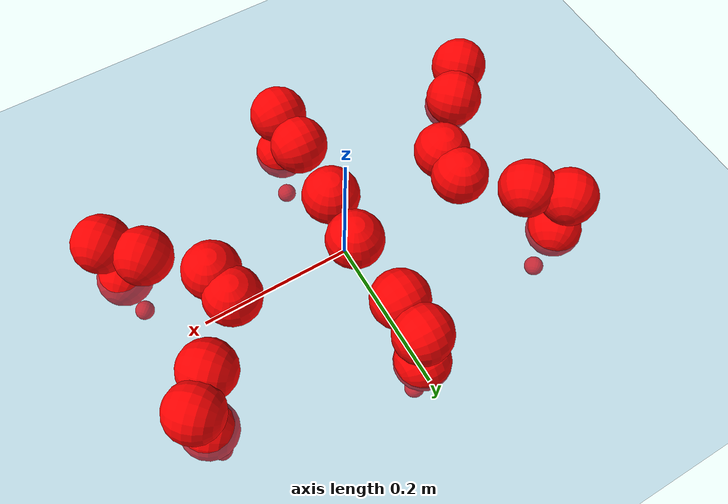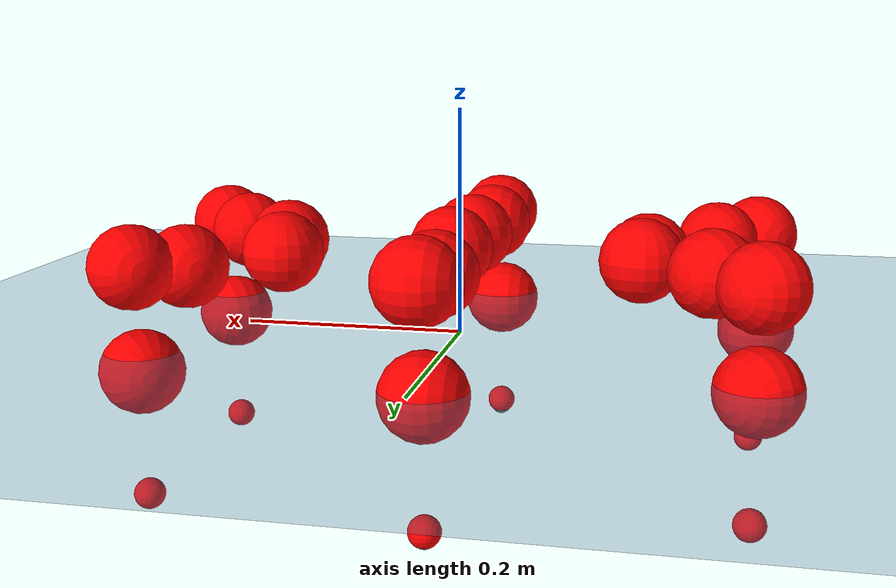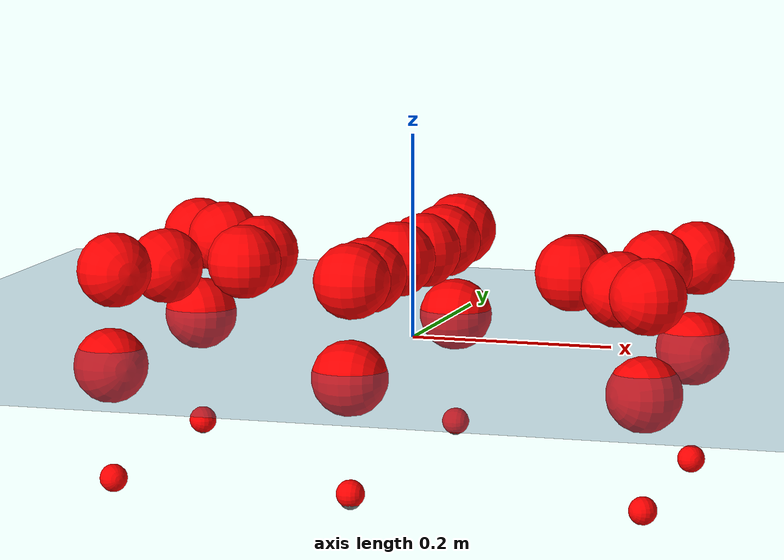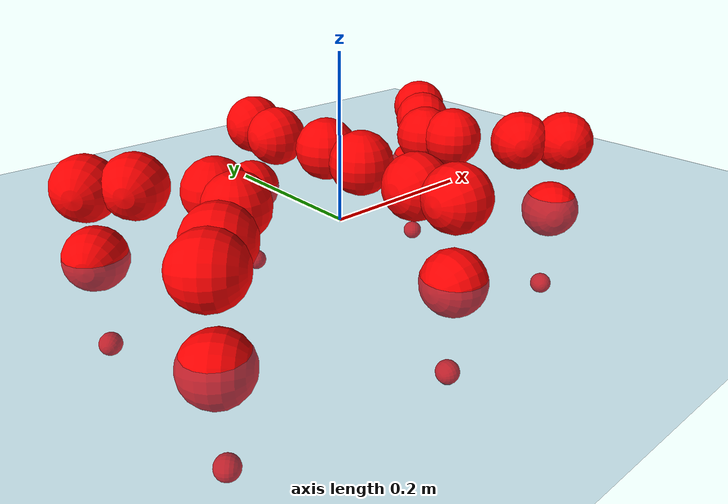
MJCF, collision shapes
<mujoco model="Golem">
  <compiler angle="radian" assetdir="assets" balanceinertia="true" inertiafromgeom="false"/>

  <option timestep="0.005" density="1.2" viscosity="2e-05"/>

  <size nkey="1"/>

  <visual>
    <quality shadowsize="8192"/>
    <map shadowclip="0.5"/>
  </visual>

  <default>
    <default class="/">
      <joint armature="0.01" damping="0.01" frictionloss="0.01"/>
      <geom contype="0" conaffinity="0" group="1" solref="-1000 -80"/>
      <site size="0.01 0.005 0.005" group="5"/>
      <general forcelimited="true" biastype="affine" gainprm="25" biasprm="0 -25 -0.5"/>
      <default class="visual">
        <geom type="mesh" group="2"/>
      </default>
      <default class="collision">
        <geom group="3"/>
      </default>
      <default class="foot">
        <geom size="0.01 0 0" condim="6" group="4" priority="1" solimp="0.015 1 0.01"/>
      </default>
      <default class="reward_collision_sphere">
        <geom group="5" rgba="1 0 0 1"/>
      </default>
    </default>
  </default>

  <asset>
    <texture type="skybox" colorspace="auto" name="//unnamed_texture_0" builtin="gradient" rgb1="0.95 0.95 0.95" rgb2="0.95 0.95 0.95" width="100" height="600"/>
    <texture type="2d" colorspace="auto" name="texplane" builtin="checker" rgb1="0.345 0.575 0.748" rgb2="0.345 0.575 0.748" markrgb="1 1 1" width="512" height="512"/>
    <material name="MatPlane" class="/" texture="texplane" texuniform="true" texrepeat="2 2" specular="0.9"/>
    <mesh name="body" class="/" file="body.stl" scale="0.001 0.001 0.001"/>
    <mesh name="coxa" class="/" file="coxa.stl" scale="0.001 0.001 0.001"/>
    <mesh name="femur" class="/" file="femur.stl" scale="0.001 0.001 0.001"/>
    <mesh name="tibia" class="/" file="tibia.stl" scale="0.001 0.001 0.001"/>
    <mesh name="tarsus" class="/" file="tarsus.stl" scale="0.001 0.001 0.001"/>
  </asset>

  <worldbody>
    <geom name="floor" class="/" size="100 100 0.125" type="plane" group="0" material="MatPlane"/>
    <light name="toplight_shadow" class="/" pos="0 0 5" dir="0.0990148 0.0990148 -0.990148" type="directional" ambient="0.04 0.04 0.04" diffuse="0.55 0.55 0.55" specular="0.12 0.12 0.12"/>
    <light name="toplight_fill" class="/" pos="0 0 5" dir="0.0990148 0.0990148 -0.990148" type="directional" castshadow="false" ambient="0.04 0.04 0.04" diffuse="0.3 0.3 0.3" specular="0.08 0.08 0.08"/>
    <body name="trunk" pos="2.44686e-05 -0.00592388 -0.0020942" quat="1 -0.000111968 -0.000578476 0.000320705">
      <inertial pos="0.000810925 0.000481672 0.0070462" quat="0.999938 -0.0101622 0.00446147 0.000476039" mass="2.50865" diaginertia="0.0113731 0.000267867 0.0277267"/>
      <joint name="//unnamed_joint_0" type="free"/>
      <geom name="//unnamed_geom_1" class="/" pos="0 0 0.0780859" quat="1 0 0 0" type="mesh" rgba="0.9 0.9 0.9 1" mesh="body"/>
      <site name="imu" class="/" pos="0.123073 0.0133276 0.110699" size="0.00914179"/>
      <camera name="track" class="/" pos="0 -0.977938 0" quat="0.707107 0.707107 0 0" mode="trackcom"/>
      <camera name="ego_camera" class="/" pos="0.134352 0 0.122009" quat="-0.5 -0.5 0.5 0.5"/>
      <body name="coxa_RR" pos="-0.185577 -0.0476194 0.073826" quat="0.383065 0.00197615 -0.00174465 -0.923718">
        <inertial pos="0.000367759 0.00724485 -0.00666709" quat="0.999978 -0.00618663 0.00191358 0.00161741" mass="0.14215" diaginertia="0.0114867 0.000274954 0.0269334"/>
        <joint name="coxa_joint_RR" class="/" pos="0 0 0" axis="0.00392192 0.00873848 -0.999954" range="-3.21647 3.12381" armature="0.00884683" damping="0.0248581" frictionloss="0.00815816"/>
        <geom name="//unnamed_geom_2" class="/" type="mesh" rgba="0.2 0.2 0.2 1" mesh="coxa"/>
        <geom name="//unnamed_geom_3" class="reward_collision_sphere" size="0.0365672" pos="-0.0310043 0 0"/>
        <body name="femur_RR" pos="0.0542262 0.00143614 0.00279986" quat="0.499277 -0.498839 0.499482 0.502394">
          <inertial pos="0.00387402 -0.00107818 -0.00119648" quat="1 0.000717 0.000315997 -0.000592679" mass="0.148777" diaginertia="0.0114509 0.000268558 0.0260881"/>
          <joint name="femur_joint_RR" class="/" pos="0 0 0" axis="0.00549083 0.010255 -0.999932" range="-3.08374 3.10174" armature="0.0108016" damping="0.0243168" frictionloss="0.00939556"/>
          <geom name="//unnamed_geom_4" class="/" type="mesh" rgba="0.9 0.9 0.9 1" mesh="femur"/>
          <geom name="//unnamed_geom_5" class="reward_collision_sphere" size="0.0365672"/>
          <body name="tibia_RR" pos="-0.000774423 -0.0564986 0.00370868" quat="-9.09782e-06 1 1.52312e-05 0.000735307">
            <inertial pos="-0.00141398 0.00190324 0.00135295" quat="0.999966 -0.00425945 -0.00697339 -0.00061426" mass="0.157655" diaginertia="0.0113869 0.000260336 0.0240123"/>
            <joint name="tibia_joint_RR" class="/" pos="0 0 0" axis="-0.00297111 -0.016537 0.999859" stiffness="0.00364495" range="-3.12088 3.30675" armature="0.00815477" damping="0" frictionloss="0.0101052"/>
            <geom name="//unnamed_geom_6" class="/" type="mesh" rgba="0.2 0.2 0.2 1" mesh="tibia"/>
            <geom name="//unnamed_geom_7" class="reward_collision_sphere" size="0.0365672"/>
            <body name="tarsus_RR" pos="0.0928828 0.00578516 -0.000237056" quat="0.999999 -0.000807544 0.000118014 -0.000668335">
              <inertial pos="0.0584396 -0.00823094 0.00484127" quat="0.502024 0.498707 0.502585 0.49666" mass="0.136997" diaginertia="0.0111517 0.000242532 0.0246753"/>
              <joint name="tarsus_joint_RR" class="/" pos="0 0 0" axis="-0.0129251 0.0024312 0.999914" range="-3.27939 3.14283" armature="0.00927597" damping="0.0472812" frictionloss="0.00853734"/>
              <geom name="//unnamed_geom_8" class="/" type="mesh" rgba="0.9 0.9 0.9 1" mesh="tarsus"/>
              <geom name="foot_1" class="foot" size="0.00895061" pos="0.115749 0 0" quat="0 -0.707107 0 0.707107"/>
              <geom name="//unnamed_geom_10" class="reward_collision_sphere" size="0.0365672"/>
              <geom name="//unnamed_geom_11" class="reward_collision_sphere" size="0.0137127" pos="0.111099 0 0"/>
              <site name="foot_1" class="foot" pos="0.115749 0 0" quat="0 -0.707107 0 0.707107" size="0.00914179"/>
            </body>
          </body>
        </body>
      </body>
      <body name="coxa_RM" pos="-0.00307463 -0.065061 0.0848796" quat="0.707074 4.31625e-05 -8.79271e-05 -0.70714">
        <inertial pos="-0.00149239 -0.000778288 0.00106129" quat="0.999964 0.00429656 0.00446297 0.0057596" mass="0.160542" diaginertia="0.0119576 0.000277444 0.0274998"/>
        <joint name="coxa_joint_RM" class="/" pos="0 0 0" axis="0.00205422 -0.00125883 -0.999997" stiffness="0.0319233" range="-3.1712 3.11609" armature="0.00867607" damping="0.0344652" frictionloss="0.0127725"/>
        <geom name="//unnamed_geom_12" class="/" type="mesh" rgba="0.2 0.2 0.2 1" mesh="coxa"/>
        <geom name="//unnamed_geom_13" class="reward_collision_sphere" size="0.0365672" pos="-0.0310043 0 0"/>
        <body name="femur_RM" pos="0.0557409 -0.00272252 -0.00265441" quat="0.500235 -0.499169 0.500359 0.500236">
          <inertial pos="-0.000491945 0.00142999 -0.00397792" quat="0.999973 0.00596354 0.00377162 -0.0019956" mass="0.144366" diaginertia="0.0123195 0.000269651 0.0262525"/>
          <joint name="femur_joint_RM" class="/" pos="0 0 0" axis="-0.00686441 0.00457879 -0.999966" stiffness="0.0037464" range="-3.11201 3.16568" armature="0.00801028" damping="0.0260127" frictionloss="0.00831439"/>
          <geom name="//unnamed_geom_14" class="/" type="mesh" rgba="0.9 0.9 0.9 1" mesh="femur"/>
          <geom name="//unnamed_geom_15" class="reward_collision_sphere" size="0.0365672"/>
          <body name="tibia_RM" pos="-0.00272103 -0.0540232 0.00115686" quat="-0.00022671 1 -0.000110261 0.000433055">
            <inertial pos="0.00722913 0.00591804 0.000580478" quat="0.999316 0.0236277 0.00969645 -0.0267399" mass="0.155465" diaginertia="0.0115968 0.000281752 0.0295978"/>
            <joint name="tibia_joint_RM" class="/" pos="0 0 0" axis="-0.00330638 -0.00795319 0.999963" range="-3.09974 3.12022" armature="0.00848891" damping="0" frictionloss="0.0082568"/>
            <geom name="//unnamed_geom_16" class="/" type="mesh" rgba="0.2 0.2 0.2 1" mesh="tibia"/>
            <geom name="//unnamed_geom_17" class="reward_collision_sphere" size="0.0365672"/>
            <body name="tarsus_RM" pos="0.0919927 0.00379994 0.00142744" quat="1 -0.00033851 -1.23642e-05 0.000552701">
              <inertial pos="0.0603479 0.00363573 -0.00156381" quat="0.499002 0.509401 0.496694 0.494775" mass="0.147143" diaginertia="0.0113641 0.000263085 0.0263199"/>
              <joint name="tarsus_joint_RM" class="/" pos="0 0 0" axis="0.00593257 -0.000229485 0.999982" stiffness="0.000811962" range="-3.14704 3.10394" armature="0.012175" damping="0" frictionloss="0.0101733"/>
              <geom name="//unnamed_geom_18" class="/" type="mesh" rgba="0.9 0.9 0.9 1" mesh="tarsus"/>
              <geom name="foot_2" class="foot" size="0.0105935" pos="0.115749 0 0" quat="0 -0.707107 0 0.707107"/>
              <geom name="//unnamed_geom_20" class="reward_collision_sphere" size="0.0365672"/>
              <geom name="//unnamed_geom_21" class="reward_collision_sphere" size="0.0137127" pos="0.111099 0 0"/>
              <site name="foot_2" class="foot" pos="0.115749 0 0" quat="0 -0.707107 0 0.707107" size="0.00914179"/>
            </body>
          </body>
        </body>
      </body>
      <body name="coxa_RF" pos="0.189794 -0.0416796 0.0762913" quat="0.923882 -1.00536e-06 4.80823e-06 -0.382677">
        <inertial pos="-0.0050358 -0.000337431 -1.60209e-05" quat="0.999939 -0.0107876 -0.00158961 0.0017209" mass="0.150541" diaginertia="0.0107507 0.000284712 0.0288514"/>
        <joint name="coxa_joint_RF" class="/" pos="0 0 0" axis="-0.00579078 -0.00212862 -0.999981" range="-3.09278 3.09288" armature="0.00966081" damping="0.0335416" frictionloss="0.0081123"/>
        <geom name="//unnamed_geom_22" class="/" type="mesh" rgba="0.2 0.2 0.2 1" mesh="coxa"/>
        <geom name="//unnamed_geom_23" class="reward_collision_sphere" size="0.0365672" pos="-0.0310043 0 0"/>
        <body name="femur_RF" pos="0.0550056 0.00151598 -0.00343746" quat="0.498579 -0.500345 0.500386 0.500687">
          <inertial pos="-0.00307617 -0.00230396 0.00424593" quat="0.999986 0.00524987 -0.00020243 -0.000630728" mass="0.154515" diaginertia="0.0115322 0.000244782 0.0268637"/>
          <joint name="femur_joint_RF" class="/" pos="0 0 0" axis="0.00427935 -0.00338537 -0.999985" stiffness="0.0121676" range="-3.24481 3.12794" armature="0.0077213" damping="0.0261059" frictionloss="0.0092553"/>
          <geom name="//unnamed_geom_24" class="/" type="mesh" rgba="0.9 0.9 0.9 1" mesh="femur"/>
          <geom name="//unnamed_geom_25" class="reward_collision_sphere" size="0.0365672"/>
          <body name="tibia_RF" pos="-0.00119315 -0.0545286 -0.00173615" quat="-0.000381539 1 -8.03068e-05 -6.06763e-05">
            <inertial pos="0.000210762 -0.00255381 0.00196158" quat="0.999987 -0.00174654 -0.000147925 0.00477538" mass="0.152263" diaginertia="0.0106281 0.000287055 0.0256708"/>
            <joint name="tibia_joint_RF" class="/" pos="0 0 0" axis="0.00218066 -0.00537836 0.999983" range="-3.09302 3.1035" armature="0.00898714" damping="0.00357965" frictionloss="0.0111683"/>
            <geom name="//unnamed_geom_26" class="/" type="mesh" rgba="0.2 0.2 0.2 1" mesh="tibia"/>
            <geom name="//unnamed_geom_27" class="reward_collision_sphere" size="0.0365672"/>
            <body name="tarsus_RF" pos="0.0938835 -0.0060751 -0.000623485" quat="0.999994 0.00296103 -0.0014825 0.000410253">
              <inertial pos="0.0670969 0.00702307 -0.00153579" quat="0.485636 0.475699 0.511191 0.525882" mass="0.156845" diaginertia="0.0105876 0.00029852 0.0261036"/>
              <joint name="tarsus_joint_RF" class="/" pos="0 0 0" axis="0.0200894 0.00662544 0.999776" stiffness="0.0344905" range="-3.27362 3.09352" armature="0.00548752" damping="0.0020137" frictionloss="0.00941239"/>
              <geom name="//unnamed_geom_28" class="/" type="mesh" rgba="0.9 0.9 0.9 1" mesh="tarsus"/>
              <geom name="foot_3" class="foot" size="0.00873176" pos="0.115749 0 0" quat="0 -0.707107 0 0.707107"/>
              <geom name="//unnamed_geom_30" class="reward_collision_sphere" size="0.0365672"/>
              <geom name="//unnamed_geom_31" class="reward_collision_sphere" size="0.0137127" pos="0.111099 0 0"/>
              <site name="foot_3" class="foot" pos="0.115749 0 0" quat="0 -0.707107 0 0.707107" size="0.00914179"/>
            </body>
          </body>
        </body>
      </body>
      <body name="coxa_LR" pos="-0.182368 0.040327 0.0768186" quat="0.382848 0.000100054 -6.46265e-05 0.923812">
        <inertial pos="-0.000932937 0.0073655 0.00179857" quat="0.999765 0.00302589 -0.020919 -0.00487438" mass="0.163058" diaginertia="0.013186 0.000279667 0.0300385"/>
        <joint name="coxa_joint_LR" class="/" pos="0 0 0" axis="-0.00375291 0.00246955 -0.99999" stiffness="0.0149941" range="-3.12412 3.00188" armature="0.0119277" damping="0" frictionloss="0.00817419"/>
        <geom name="//unnamed_geom_32" class="/" type="mesh" rgba="0.2 0.2 0.2 1" mesh="coxa"/>
        <geom name="//unnamed_geom_33" class="reward_collision_sphere" size="0.0365672" pos="-0.0310043 0 0"/>
        <body name="femur_LR" pos="0.0535735 0.000556681 0.00355522" quat="0.499012 -0.500002 0.501295 0.499688">
          <inertial pos="0.000864814 -0.00011737 0.00190966" quat="0.999429 -0.0249701 0.00873278 0.0209992" mass="0.152578" diaginertia="0.0117832 0.000271125 0.0236412"/>
          <joint name="femur_joint_LR" class="/" pos="0 0 0" axis="0.00568161 0.000638611 0.999984" stiffness="0.0222136" range="-3.2966 3.22594" armature="0.00834574" damping="0.0283419" frictionloss="0.00811344"/>
          <geom name="//unnamed_geom_34" class="/" type="mesh" rgba="0.9 0.9 0.9 1" mesh="femur"/>
          <geom name="//unnamed_geom_35" class="reward_collision_sphere" size="0.0365672"/>
          <body name="tibia_LR" pos="0.00226508 -0.0522425 0.00285601" quat="-7.4542e-05 1 0.000574535 -0.000392326">
            <inertial pos="-0.00221954 0.00691401 -0.00305215" quat="0.999948 -0.00950646 -0.00180851 0.00324248" mass="0.15569" diaginertia="0.0115833 0.000282341 0.0273528"/>
            <joint name="tibia_joint_LR" class="/" pos="0 0 0" axis="-0.000186479 0.000873783 -1" range="-3.05128 3.10299" armature="0.00992904" damping="0.0559799" frictionloss="0.00806982"/>
            <geom name="//unnamed_geom_36" class="/" type="mesh" rgba="0.2 0.2 0.2 1" mesh="tibia"/>
            <geom name="//unnamed_geom_37" class="reward_collision_sphere" size="0.0365672"/>
            <body name="tarsus_LR" pos="0.0825655 0.00151428 0.000795133" quat="0.999997 -0.00151221 -0.0020446 -0.000589467">
              <inertial pos="0.0565266 -0.00105945 0.000938275" quat="0.501765 0.492425 0.509798 0.495837" mass="0.14638" diaginertia="0.0118467 0.000268821 0.0270541"/>
              <joint name="tarsus_joint_LR" class="/" pos="0 0 0" axis="0.00759795 -0.0141695 -0.999871" stiffness="0.026313" range="-3.03064 3.15341" armature="0.00911339" damping="0.0233532" frictionloss="0.0118105"/>
              <geom name="//unnamed_geom_38" class="/" type="mesh" rgba="0.9 0.9 0.9 1" mesh="tarsus"/>
              <geom name="foot_4" class="foot" size="0.00944741" pos="0.115749 0 0" quat="0.707107 0 -0.707107 0"/>
              <geom name="//unnamed_geom_40" class="reward_collision_sphere" size="0.0365672"/>
              <geom name="//unnamed_geom_41" class="reward_collision_sphere" size="0.0137127" pos="0.111099 0 0"/>
              <site name="foot_4" class="foot" pos="0.115749 0 0" quat="0.707107 0 -0.707107 0" size="0.00914179"/>
            </body>
          </body>
        </body>
      </body>
      <body name="coxa_LM" pos="0.0023939 0.0642153 0.0840494" quat="0.707131 0.000750481 -0.000220667 0.707082">
        <inertial pos="0.00526275 -0.00105088 0.00401294" quat="0.999999 -0.000795396 3.98312e-05 -0.00101185" mass="0.161555" diaginertia="0.0128772 0.000312443 0.0256645"/>
        <joint name="coxa_joint_LM" class="/" pos="0 0 0" axis="-0.000567501 0.00902506 -0.999959" stiffness="0.00408225" range="-3.14733 3.12786" armature="0.00626334" damping="0.041124" frictionloss="0.0103352"/>
        <geom name="//unnamed_geom_42" class="/" type="mesh" rgba="0.2 0.2 0.2 1" mesh="coxa"/>
        <geom name="//unnamed_geom_43" class="reward_collision_sphere" size="0.0365672" pos="-0.0310043 0 0"/>
        <body name="femur_LM" pos="0.0605559 0.00626418 -0.00428346" quat="0.499886 -0.500498 0.499007 0.500607">
          <inertial pos="-0.00414005 -0.00124037 -0.00594384" quat="0.999985 -0.00224849 0.00499699 -0.000419455" mass="0.152424" diaginertia="0.0117073 0.000281518 0.0270991"/>
          <joint name="femur_joint_LM" class="/" pos="0 0 0" axis="0.00304776 0.00143897 0.999994" range="-3.09236 3.22031" armature="0.00882699" damping="0.023248" frictionloss="0.00781093"/>
          <geom name="//unnamed_geom_44" class="/" type="mesh" rgba="0.9 0.9 0.9 1" mesh="femur"/>
          <geom name="//unnamed_geom_45" class="reward_collision_sphere" size="0.0365672"/>
          <body name="tibia_LM" pos="-0.00438149 -0.0501929 -0.0019302" quat="-0.00105586 0.999999 0.000536297 -0.000240556">
            <inertial pos="0.00210287 0.00680284 -0.007859" quat="0.999198 -0.02211 -0.0235057 0.023695" mass="0.160054" diaginertia="0.0114935 0.000288866 0.02825"/>
            <joint name="tibia_joint_LM" class="/" pos="0 0 0" axis="-0.0174178 -0.00869261 -0.999811" stiffness="0.0357303" range="-3.16355 3.25657" armature="0.00930348" damping="0.0188806" frictionloss="0.00921831"/>
            <geom name="//unnamed_geom_46" class="/" type="mesh" rgba="0.2 0.2 0.2 1" mesh="tibia"/>
            <geom name="//unnamed_geom_47" class="reward_collision_sphere" size="0.0365672"/>
            <body name="tarsus_LM" pos="0.0885575 0.00537078 -0.00572205" quat="1 0.000153858 -8.28695e-05 6.19786e-05">
              <inertial pos="0.0625398 -0.000230558 0.00498109" quat="0.474567 0.492577 0.519858 0.511764" mass="0.144389" diaginertia="0.0114896 0.000296803 0.0282512"/>
              <joint name="tarsus_joint_LM" class="/" pos="0 0 0" axis="0.0192794 -0.0180342 -0.999651" stiffness="0.0335335" range="-3.18001 3.25147" armature="0.00932941" damping="0.0111209" frictionloss="0.00909255"/>
              <geom name="//unnamed_geom_48" class="/" type="mesh" rgba="0.9 0.9 0.9 1" mesh="tarsus"/>
              <geom name="foot_5" class="foot" size="0.00970694" pos="0.115749 0 0" quat="0.707107 0 -0.707107 0"/>
              <geom name="//unnamed_geom_50" class="reward_collision_sphere" size="0.0365672"/>
              <geom name="//unnamed_geom_51" class="reward_collision_sphere" size="0.0137127" pos="0.111099 0 0"/>
              <site name="foot_5" class="foot" pos="0.115749 0 0" quat="0.707107 0 -0.707107 0" size="0.00914179"/>
            </body>
          </body>
        </body>
      </body>
      <body name="coxa_LF" pos="0.182605 0.042146 0.0720287" quat="0.925047 0.000529512 1.74791e-05 0.379853">
        <inertial pos="0.00140832 -0.00157025 -0.000311163" quat="0.999207 0.0303178 -0.0160931 -0.0201808" mass="0.143204" diaginertia="0.0122202 0.000263903 0.0303622"/>
        <joint name="coxa_joint_LF" class="/" pos="0 0 0" axis="-0.00351865 0.00508764 -0.999981" stiffness="0.0404252" range="-3.14439 3.142" armature="0.0103062" damping="0.0197129" frictionloss="0.0100499"/>
        <geom name="//unnamed_geom_52" class="/" type="mesh" rgba="0.2 0.2 0.2 1" mesh="coxa"/>
        <geom name="//unnamed_geom_53" class="reward_collision_sphere" size="0.0365672" pos="-0.0310043 0 0"/>
        <body name="femur_LF" pos="0.0601723 0.000923055 -0.00305782" quat="0.500089 -0.500402 0.499902 0.499606">
          <inertial pos="-0.00547445 -0.00103329 -0.00684225" quat="0.999997 -0.000156892 -0.0018478 -0.00134572" mass="0.159715" diaginertia="0.0123389 0.000279642 0.0291703"/>
          <joint name="femur_joint_LF" class="/" pos="0 0 0" axis="-0.00807192 0.0081899 0.999934" range="-3.13607 2.9759" armature="0.00753037" damping="0.031661" frictionloss="0.0100271"/>
          <geom name="//unnamed_geom_54" class="/" type="mesh" rgba="0.9 0.9 0.9 1" mesh="femur"/>
          <geom name="//unnamed_geom_55" class="reward_collision_sphere" size="0.0365672"/>
          <body name="tibia_LF" pos="-0.00497486 -0.0499921 0.00373108" quat="-0.000424487 0.999999 0.00131901 0.000373145">
            <inertial pos="-0.00103241 0.00184813 -0.000909067" quat="0.999983 0.0055553 -0.00150271 0.000204584" mass="0.151584" diaginertia="0.0115228 0.000285505 0.026814"/>
            <joint name="tibia_joint_LF" class="/" pos="0 0 0" axis="-0.0215914 -0.00547007 -0.999752" range="-3.14048 3.07683" armature="0.0120165" damping="0" frictionloss="0.00953245"/>
            <geom name="//unnamed_geom_56" class="/" type="mesh" rgba="0.2 0.2 0.2 1" mesh="tibia"/>
            <geom name="//unnamed_geom_57" class="reward_collision_sphere" size="0.0365672"/>
            <body name="tarsus_LF" pos="0.0907556 -0.00370808 -0.00204951" quat="1 1.64456e-05 -5.12e-05 -8.66777e-05">
              <inertial pos="0.0665583 0.000816967 -0.00127696" quat="0.500897 0.499432 0.501008 0.498659" mass="0.157551" diaginertia="0.0116718 0.000279027 0.026622"/>
              <joint name="tarsus_joint_LF" class="/" pos="0 0 0" axis="-0.00276772 0.000739473 -0.999996" stiffness="0.0310224" range="-3.0146 3.00506" armature="0.00903671" damping="0.0188715" frictionloss="0.00819875"/>
              <geom name="//unnamed_geom_58" class="/" type="mesh" rgba="0.9 0.9 0.9 1" mesh="tarsus"/>
              <geom name="foot_6" class="foot" size="0.00777616" pos="0.115749 0 0" quat="0.707107 0 -0.707107 0"/>
              <geom name="//unnamed_geom_60" class="reward_collision_sphere" size="0.0365672"/>
              <geom name="//unnamed_geom_61" class="reward_collision_sphere" size="0.0137127" pos="0.111099 0 0"/>
              <site name="foot_6" class="foot" pos="0.115749 0 0" quat="0.707107 0 -0.707107 0" size="0.00914179"/>
            </body>
          </body>
        </body>
      </body>
    </body>
  </worldbody>

  <contact>
    <pair class="/" geom1="floor" geom2="foot_1" name="//unnamed_contact_0"/>
    <pair class="/" geom1="floor" geom2="foot_2" name="//unnamed_contact_1"/>
    <pair class="/" geom1="floor" geom2="foot_3" name="//unnamed_contact_2"/>
    <pair class="/" geom1="floor" geom2="foot_4" name="//unnamed_contact_3"/>
    <pair class="/" geom1="floor" geom2="foot_5" name="//unnamed_contact_4"/>
    <pair class="/" geom1="floor" geom2="foot_6" name="//unnamed_contact_5"/>
  </contact>

  <actuator>
    <general name="coxa_joint_RR" class="/" joint="coxa_joint_RR" forcerange="-6.60487 6.60487" gainprm="20.82" biasprm="0 -20.82 -0.417075"/>
    <general name="femur_joint_RR" class="/" joint="femur_joint_RR" forcerange="-6.97027 6.97027" gainprm="20.82" biasprm="0 -20.82 -0.417075"/>
    <general name="tibia_joint_RR" class="/" joint="tibia_joint_RR" forcerange="-8.45753 8.45753" gainprm="20.82" biasprm="0 -20.82 -0.417075"/>
    <general name="tarsus_joint_RR" class="/" joint="tarsus_joint_RR" forcerange="-7.31747 7.31747" gainprm="20.82" biasprm="0 -20.82 -0.417075"/>
    <general name="coxa_joint_RM" class="/" joint="coxa_joint_RM" forcerange="-6.60979 6.60979" gainprm="20.82" biasprm="0 -20.82 -0.417075"/>
    <general name="femur_joint_RM" class="/" joint="femur_joint_RM" forcerange="-7.16227 7.16227" gainprm="20.82" biasprm="0 -20.82 -0.417075"/>
    <general name="tibia_joint_RM" class="/" joint="tibia_joint_RM" forcerange="-8.67391 8.67391" gainprm="20.82" biasprm="0 -20.82 -0.417075"/>
    <general name="tarsus_joint_RM" class="/" joint="tarsus_joint_RM" forcerange="-6.42979 6.42979" gainprm="20.82" biasprm="0 -20.82 -0.417075"/>
    <general name="coxa_joint_RF" class="/" joint="coxa_joint_RF" forcerange="-6.16771 6.16771" gainprm="20.82" biasprm="0 -20.82 -0.417075"/>
    <general name="femur_joint_RF" class="/" joint="femur_joint_RF" forcerange="-4.67062 4.67062" gainprm="20.82" biasprm="0 -20.82 -0.417075"/>
    <general name="tibia_joint_RF" class="/" joint="tibia_joint_RF" forcerange="-6.3816 6.3816" gainprm="20.82" biasprm="0 -20.82 -0.417075"/>
    <general name="tarsus_joint_RF" class="/" joint="tarsus_joint_RF" forcerange="-4.69367 4.69367" gainprm="20.82" biasprm="0 -20.82 -0.417075"/>
    <general name="coxa_joint_LR" class="/" joint="coxa_joint_LR" forcerange="-7.89546 7.89546" gainprm="20.82" biasprm="0 -20.82 -0.417075"/>
    <general name="femur_joint_LR" class="/" joint="femur_joint_LR" forcerange="-6.72078 6.72078" gainprm="20.82" biasprm="0 -20.82 -0.417075"/>
    <general name="tibia_joint_LR" class="/" joint="tibia_joint_LR" forcerange="-6.17068 6.17068" gainprm="20.82" biasprm="0 -20.82 -0.417075"/>
    <general name="tarsus_joint_LR" class="/" joint="tarsus_joint_LR" forcerange="-6.56286 6.56286" gainprm="20.82" biasprm="0 -20.82 -0.417075"/>
    <general name="coxa_joint_LM" class="/" joint="coxa_joint_LM" forcerange="-6.44971 6.44971" gainprm="20.82" biasprm="0 -20.82 -0.417075"/>
    <general name="femur_joint_LM" class="/" joint="femur_joint_LM" forcerange="-6.8559 6.8559" gainprm="20.82" biasprm="0 -20.82 -0.417075"/>
    <general name="tibia_joint_LM" class="/" joint="tibia_joint_LM" forcerange="-8.30125 8.30125" gainprm="20.82" biasprm="0 -20.82 -0.417075"/>
    <general name="tarsus_joint_LM" class="/" joint="tarsus_joint_LM" forcerange="-7.49257 7.49257" gainprm="20.82" biasprm="0 -20.82 -0.417075"/>
    <general name="coxa_joint_LF" class="/" joint="coxa_joint_LF" forcerange="-6.78554 6.78554" gainprm="20.82" biasprm="0 -20.82 -0.417075"/>
    <general name="femur_joint_LF" class="/" joint="femur_joint_LF" forcerange="-7.98074 7.98074" gainprm="20.82" biasprm="0 -20.82 -0.417075"/>
    <general name="tibia_joint_LF" class="/" joint="tibia_joint_LF" forcerange="-6.97862 6.97862" gainprm="20.82" biasprm="0 -20.82 -0.417075"/>
    <general name="tarsus_joint_LF" class="/" joint="tarsus_joint_LF" forcerange="-6.59115 6.59115" gainprm="20.82" biasprm="0 -20.82 -0.417075"/>
  </actuator>

  <sensor>
    <gyro site="imu" name="imu_angular_velocity"/>
    <velocimeter site="imu" name="imu_linear_velocity"/>
    <framelinvel objtype="site" objname="foot_1" name="foot_1_global_linear_velocity"/>
    <framelinvel objtype="site" objname="foot_2" name="foot_2_global_linear_velocity"/>
    <framelinvel objtype="site" objname="foot_3" name="foot_3_global_linear_velocity"/>
    <framelinvel objtype="site" objname="foot_4" name="foot_4_global_linear_velocity"/>
    <framelinvel objtype="site" objname="foot_5" name="foot_5_global_linear_velocity"/>
    <framelinvel objtype="site" objname="foot_6" name="foot_6_global_linear_velocity"/>
  </sensor>

  <keyframe>
    <key name="home" qpos="0 0 0.1457 1 0 0 0 0 0 0 0 0 0 0 0 0 0 0 0 0 0 0 0 0 0 0 0 0 0 0 0"/>
  </keyframe>
</mujoco>
